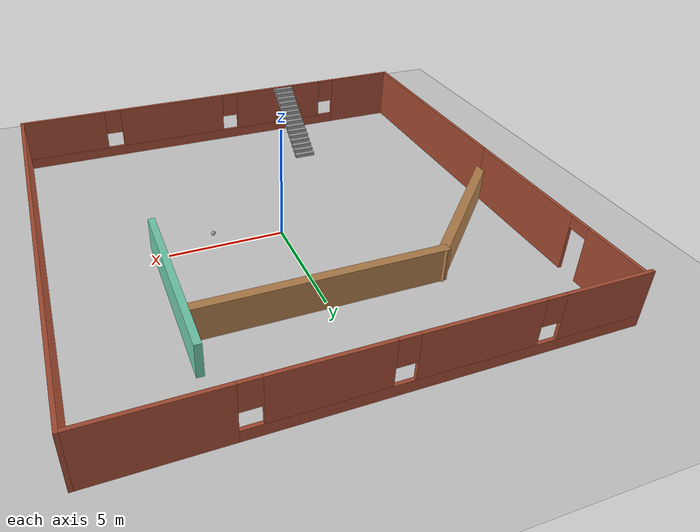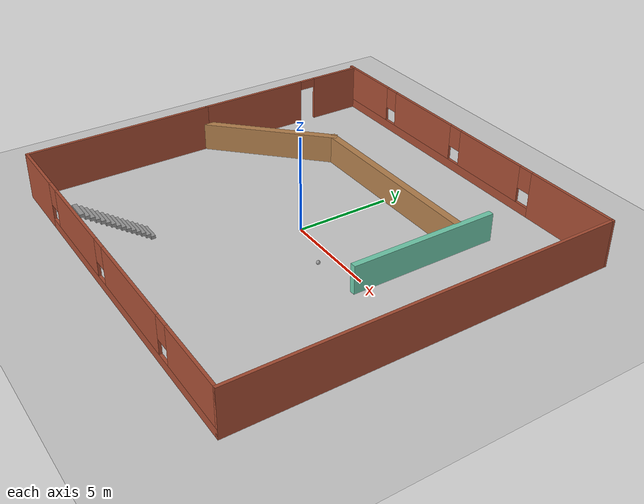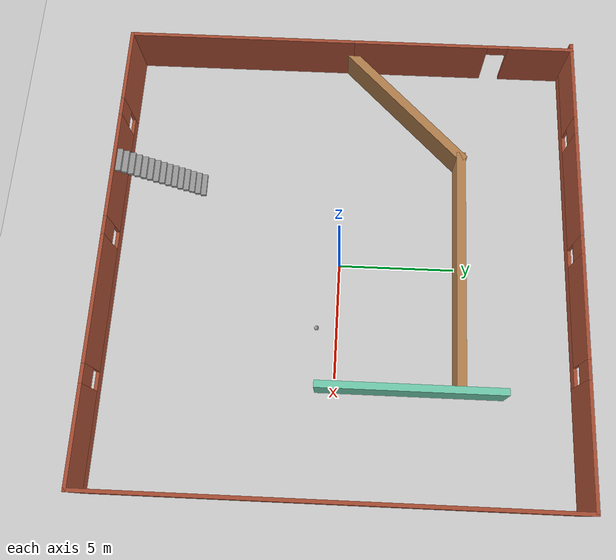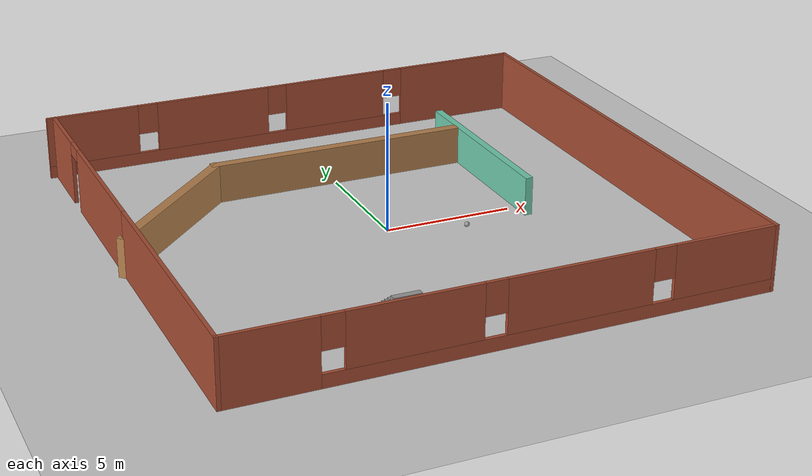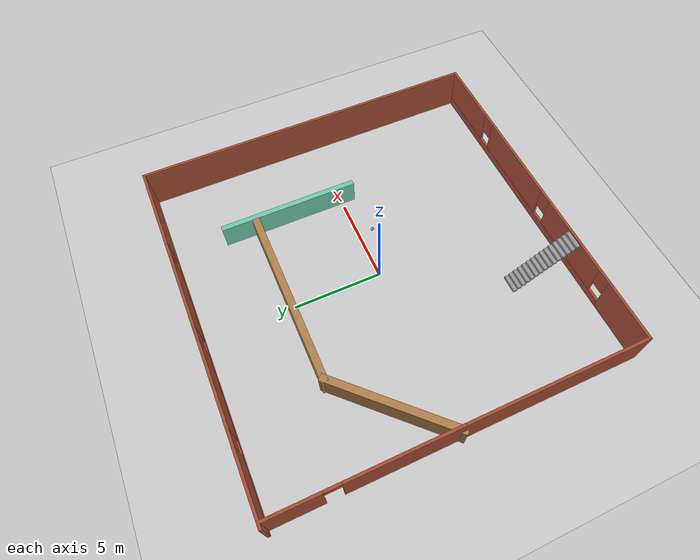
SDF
<sdf version="1.6">
 <world name="default">
  <light name="sun" type="directional">
   <pose>0 0 10 0 -0 0</pose>
   <diffuse>0.8 0.8 0.8 1</diffuse>
   <specular>0.1 0.1 0.1 1</specular>
   <attenuation>
    <range>1000</range>
    <constant>0.9</constant>
    <linear>0.01</linear>
    <quadratic>0.001</quadratic>
   </attenuation>
   <direction>-0.5 0.5 -1</direction>
  </light>
  <model name="ground_plane">
   <static>1</static>
   <link name="link">
    <collision name="collision">
     <geometry><plane><normal>0 0 1</normal><size>100 100</size></plane></geometry>
     <surface><friction><ode><mu>100</mu><mu2>50</mu2></ode></friction></surface>
    </collision>
    <visual name="visual">
     <cast_shadows>0</cast_shadows>
     <geometry><plane><normal>0 0 1</normal><size>100 100</size></plane></geometry>
     <material>
      <script><uri>file://media/materials/scripts/gazebo.material</uri><name>Gazebo/Grey</name></script>
     </material>
    </visual>
   </link>
  </model>
  <gravity>0 0 -9.8</gravity>
  <magnetic_field>6e-06 2.3e-05 -4.2e-05</magnetic_field>
  <atmosphere type="adiabatic"/>
  <physics name="default_physics" default="0" type="ode">
   <max_step_size>0.001</max_step_size>
   <real_time_factor>1</real_time_factor>
   <real_time_update_rate>1000</real_time_update_rate>
  </physics>
  <scene><ambient>0.4 0.4 0.4 1</ambient><background>0.7 0.7 0.7 1</background><shadows>1</shadows></scene>
  <spherical_coordinates>
   <surface_model>EARTH_WGS84</surface_model>
   <latitude_deg>0</latitude_deg>
   <longitude_deg>0</longitude_deg>
   <elevation>0</elevation>
   <heading_deg>0</heading_deg>
  </spherical_coordinates>
  <model name="my_house">
   <pose>-0.060981 0.094672 0 0 -0 0</pose>
   <link name="Stairs_1">
    <visual name="Stairs_1_Visual_0">
     <pose>-3.52265 -6.42087 0.083333 0 -0 0</pose>
     <geometry><box><size>1 0.233333 0.166667</size></box></geometry>
     <material>
      <script><uri>file://media/materials/scripts/gazebo.material</uri><name>Gazebo/Grey</name></script>
      <ambient>1 1 1 1</ambient>
     </material>
     <meta><layer>0</layer></meta>
    </visual>
    <collision name="Stairs_1_Collision_0">
     <geometry><box><size>1 0.233333 0.166667</size></box></geometry>
     <pose>-3.52265 -6.42087 0.083333 0 -0 0</pose>
    </collision>
    <visual name="Stairs_1_Visual_1">
     <pose>-3.52265 -6.6542 0.25 0 -0 0</pose>
     <geometry><box><size>1 0.233333 0.166667</size></box></geometry>
     <material>
      <script><uri>file://media/materials/scripts/gazebo.material</uri><name>Gazebo/Grey</name></script>
      <ambient>1 1 1 1</ambient>
     </material>
     <meta><layer>0</layer></meta>
    </visual>
    <collision name="Stairs_1_Collision_1">
     <geometry><box><size>1 0.233333 0.166667</size></box></geometry>
     <pose>-3.52265 -6.6542 0.25 0 -0 0</pose>
    </collision>
    <visual name="Stairs_1_Visual_2">
     <pose>-3.52265 -6.88753 0.416667 0 -0 0</pose>
     <geometry><box><size>1 0.233333 0.166667</size></box></geometry>
     <material>
      <script><uri>file://media/materials/scripts/gazebo.material</uri><name>Gazebo/Grey</name></script>
      <ambient>1 1 1 1</ambient>
     </material>
     <meta><layer>0</layer></meta>
    </visual>
    <collision name="Stairs_1_Collision_2">
     <geometry><box><size>1 0.233333 0.166667</size></box></geometry>
     <pose>-3.52265 -6.88753 0.416667 0 -0 0</pose>
    </collision>
    <visual name="Stairs_1_Visual_3">
     <pose>-3.52265 -7.12087 0.583333 0 -0 0</pose>
     <geometry><box><size>1 0.233333 0.166667</size></box></geometry>
     <material>
      <script><uri>file://media/materials/scripts/gazebo.material</uri><name>Gazebo/Grey</name></script>
      <ambient>1 1 1 1</ambient>
     </material>
     <meta><layer>0</layer></meta>
    </visual>
    <collision name="Stairs_1_Collision_3">
     <geometry><box><size>1 0.233333 0.166667</size></box></geometry>
     <pose>-3.52265 -7.12087 0.583333 0 -0 0</pose>
    </collision>
    <visual name="Stairs_1_Visual_4">
     <pose>-3.52265 -7.3542 0.75 0 -0 0</pose>
     <geometry><box><size>1 0.233333 0.166667</size></box></geometry>
     <material>
      <script><uri>file://media/materials/scripts/gazebo.material</uri><name>Gazebo/Grey</name></script>
      <ambient>1 1 1 1</ambient>
     </material>
     <meta><layer>0</layer></meta>
    </visual>
    <collision name="Stairs_1_Collision_4">
     <geometry><box><size>1 0.233333 0.166667</size></box></geometry>
     <pose>-3.52265 -7.3542 0.75 0 -0 0</pose>
    </collision>
    <visual name="Stairs_1_Visual_5">
     <pose>-3.52265 -7.58753 0.916667 0 -0 0</pose>
     <geometry><box><size>1 0.233333 0.166667</size></box></geometry>
     <material>
      <script><uri>file://media/materials/scripts/gazebo.material</uri><name>Gazebo/Grey</name></script>
      <ambient>1 1 1 1</ambient>
     </material>
     <meta><layer>0</layer></meta>
    </visual>
    <collision name="Stairs_1_Collision_5">
     <geometry><box><size>1 0.233333 0.166667</size></box></geometry>
     <pose>-3.52265 -7.58753 0.916667 0 -0 0</pose>
    </collision>
    <visual name="Stairs_1_Visual_6">
     <pose>-3.52265 -7.82087 1.08333 0 -0 0</pose>
     <geometry><box><size>1 0.233333 0.166667</size></box></geometry>
     <material>
      <script><uri>file://media/materials/scripts/gazebo.material</uri><name>Gazebo/Grey</name></script>
      <ambient>1 1 1 1</ambient>
     </material>
     <meta><layer>0</layer></meta>
    </visual>
    <collision name="Stairs_1_Collision_6">
     <geometry><box><size>1 0.233333 0.166667</size></box></geometry>
     <pose>-3.52265 -7.82087 1.08333 0 -0 0</pose>
    </collision>
    <visual name="Stairs_1_Visual_7">
     <pose>-3.52265 -8.0542 1.25 0 -0 0</pose>
     <geometry><box><size>1 0.233333 0.166667</size></box></geometry>
     <material>
      <script><uri>file://media/materials/scripts/gazebo.material</uri><name>Gazebo/Grey</name></script>
      <ambient>1 1 1 1</ambient>
     </material>
     <meta><layer>0</layer></meta>
    </visual>
    <collision name="Stairs_1_Collision_7">
     <geometry><box><size>1 0.233333 0.166667</size></box></geometry>
     <pose>-3.52265 -8.0542 1.25 0 -0 0</pose>
    </collision>
    <visual name="Stairs_1_Visual_8">
     <pose>-3.52265 -8.28753 1.41667 0 -0 0</pose>
     <geometry><box><size>1 0.233333 0.166667</size></box></geometry>
     <material>
      <script><uri>file://media/materials/scripts/gazebo.material</uri><name>Gazebo/Grey</name></script>
      <ambient>1 1 1 1</ambient>
     </material>
     <meta><layer>0</layer></meta>
    </visual>
    <collision name="Stairs_1_Collision_8">
     <geometry><box><size>1 0.233333 0.166667</size></box></geometry>
     <pose>-3.52265 -8.28753 1.41667 0 -0 0</pose>
    </collision>
    <visual name="Stairs_1_Visual_9">
     <pose>-3.52265 -8.52087 1.58333 0 -0 0</pose>
     <geometry><box><size>1 0.233333 0.166667</size></box></geometry>
     <material>
      <script><uri>file://media/materials/scripts/gazebo.material</uri><name>Gazebo/Grey</name></script>
      <ambient>1 1 1 1</ambient>
     </material>
     <meta><layer>0</layer></meta>
    </visual>
    <collision name="Stairs_1_Collision_9">
     <geometry><box><size>1 0.233333 0.166667</size></box></geometry>
     <pose>-3.52265 -8.52087 1.58333 0 -0 0</pose>
    </collision>
    <visual name="Stairs_1_Visual_10">
     <pose>-3.52265 -8.7542 1.75 0 -0 0</pose>
     <geometry><box><size>1 0.233333 0.166667</size></box></geometry>
     <material>
      <script><uri>file://media/materials/scripts/gazebo.material</uri><name>Gazebo/Grey</name></script>
      <ambient>1 1 1 1</ambient>
     </material>
     <meta><layer>0</layer></meta>
    </visual>
    <collision name="Stairs_1_Collision_10">
     <geometry><box><size>1 0.233333 0.166667</size></box></geometry>
     <pose>-3.52265 -8.7542 1.75 0 -0 0</pose>
    </collision>
    <visual name="Stairs_1_Visual_11">
     <pose>-3.52265 -8.98753 1.91667 0 -0 0</pose>
     <geometry><box><size>1 0.233333 0.166667</size></box></geometry>
     <material>
      <script><uri>file://media/materials/scripts/gazebo.material</uri><name>Gazebo/Grey</name></script>
      <ambient>1 1 1 1</ambient>
     </material>
     <meta><layer>0</layer></meta>
    </visual>
    <collision name="Stairs_1_Collision_11">
     <geometry><box><size>1 0.233333 0.166667</size></box></geometry>
     <pose>-3.52265 -8.98753 1.91667 0 -0 0</pose>
    </collision>
    <visual name="Stairs_1_Visual_12">
     <pose>-3.52265 -9.22086 2.08333 0 -0 0</pose>
     <geometry><box><size>1 0.233333 0.166667</size></box></geometry>
     <material>
      <script><uri>file://media/materials/scripts/gazebo.material</uri><name>Gazebo/Grey</name></script>
      <ambient>1 1 1 1</ambient>
     </material>
     <meta><layer>0</layer></meta>
    </visual>
    <collision name="Stairs_1_Collision_12">
     <geometry><box><size>1 0.233333 0.166667</size></box></geometry>
     <pose>-3.52265 -9.22086 2.08333 0 -0 0</pose>
    </collision>
    <visual name="Stairs_1_Visual_13">
     <pose>-3.52265 -9.4542 2.25 0 -0 0</pose>
     <geometry><box><size>1 0.233333 0.166667</size></box></geometry>
     <material>
      <script><uri>file://media/materials/scripts/gazebo.material</uri><name>Gazebo/Grey</name></script>
      <ambient>1 1 1 1</ambient>
     </material>
     <meta><layer>0</layer></meta>
    </visual>
    <collision name="Stairs_1_Collision_13">
     <geometry><box><size>1 0.233333 0.166667</size></box></geometry>
     <pose>-3.52265 -9.4542 2.25 0 -0 0</pose>
    </collision>
    <visual name="Stairs_1_Visual_14">
     <pose>-3.52265 -9.68753 2.41667 0 -0 0</pose>
     <geometry><box><size>1 0.233333 0.166667</size></box></geometry>
     <material>
      <script><uri>file://media/materials/scripts/gazebo.material</uri><name>Gazebo/Grey</name></script>
      <ambient>1 1 1 1</ambient>
     </material>
     <meta><layer>0</layer></meta>
    </visual>
    <collision name="Stairs_1_Collision_14">
     <geometry><box><size>1 0.233333 0.166667</size></box></geometry>
     <pose>-3.52265 -9.68753 2.41667 0 -0 0</pose>
    </collision>
   </link>
   <link name="Wall_14">
    <collision name="Wall_14_Collision">
     <geometry><box><size>20 0.15 2.5</size></box></geometry>
     <pose>0 0 1.25 0 -0 0</pose>
    </collision>
    <visual name="Wall_14_Visual">
     <pose>0 0 1.25 0 -0 0</pose>
     <geometry><box><size>20 0.15 2.5</size></box></geometry>
     <material>
      <script><uri>file://media/materials/scripts/gazebo.material</uri><name>Gazebo/Bricks</name></script>
      <ambient>1 1 1 1</ambient>
     </material>
     <meta><layer>0</layer></meta>
    </visual>
    <pose>10.05 0 0 0 -0 1.5708</pose>
   </link>
   <link name="Wall_15">
    <pose>-1e-06 9.925 0 0 -0 3.14159</pose>
    <visual name="Wall_15_Visual_0">
     <pose>-7.59411 0 1.25 0 -0 0</pose>
     <geometry><box><size>5.06177 0.15 2.5</size></box></geometry>
     <material>
      <script><uri>file://media/materials/scripts/gazebo.material</uri><name>Gazebo/Bricks</name></script>
      <ambient>1 1 1 1</ambient>
     </material>
     <meta><layer>0</layer></meta>
    </visual>
    <collision name="Wall_15_Collision_0">
     <geometry><box><size>5.06177 0.15 2.5</size></box></geometry>
     <pose>-7.59411 0 1.25 0 -0 0</pose>
    </collision>
    <visual name="Wall_15_Visual_1">
     <pose>2.53089 0 0.25 0 -0 0</pose>
     <geometry><box><size>15.1882 0.15 0.5</size></box></geometry>
     <material>
      <script><uri>file://media/materials/scripts/gazebo.material</uri><name>Gazebo/Bricks</name></script>
      <ambient>1 1 1 1</ambient>
     </material>
     <meta><layer>0</layer></meta>
    </visual>
    <collision name="Wall_15_Collision_1">
     <geometry><box><size>15.1882 0.15 0.5</size></box></geometry>
     <pose>2.53089 0 0.25 0 -0 0</pose>
    </collision>
    <visual name="Wall_15_Visual_2">
     <pose>-2.06836 0 1.5 0 -0 0</pose>
     <geometry><box><size>4.38974 0.15 2</size></box></geometry>
     <material>
      <script><uri>file://media/materials/scripts/gazebo.material</uri><name>Gazebo/Bricks</name></script>
      <ambient>1 1 1 1</ambient>
     </material>
     <meta><layer>0</layer></meta>
    </visual>
    <collision name="Wall_15_Collision_2">
     <geometry><box><size>4.38974 0.15 2</size></box></geometry>
     <pose>-2.06836 0 1.5 0 -0 0</pose>
    </collision>
    <visual name="Wall_15_Visual_3">
     <pose>3.28189 0 1.5 0 -0 0</pose>
     <geometry><box><size>4.71076 0.15 2</size></box></geometry>
     <material>
      <script><uri>file://media/materials/scripts/gazebo.material</uri><name>Gazebo/Bricks</name></script>
      <ambient>1 1 1 1</ambient>
     </material>
     <meta><layer>0</layer></meta>
    </visual>
    <collision name="Wall_15_Collision_3">
     <geometry><box><size>4.71076 0.15 2</size></box></geometry>
     <pose>3.28189 0 1.5 0 -0 0</pose>
    </collision>
    <visual name="Wall_15_Visual_4">
     <pose>8.28114 0 1.5 0 -0 0</pose>
     <geometry><box><size>3.68773 0.15 2</size></box></geometry>
     <material>
      <script><uri>file://media/materials/scripts/gazebo.material</uri><name>Gazebo/Bricks</name></script>
      <ambient>1 1 1 1</ambient>
     </material>
     <meta><layer>0</layer></meta>
    </visual>
    <collision name="Wall_15_Collision_4">
     <geometry><box><size>3.68773 0.15 2</size></box></geometry>
     <pose>8.28114 0 1.5 0 -0 0</pose>
    </collision>
    <visual name="Wall_15_Visual_5">
     <pose>-4.66323 0 1.9 0 -0 0</pose>
     <geometry><box><size>0.8 0.15 1.2</size></box></geometry>
     <material>
      <script><uri>file://media/materials/scripts/gazebo.material</uri><name>Gazebo/Bricks</name></script>
      <ambient>1 1 1 1</ambient>
     </material>
     <meta><layer>0</layer></meta>
    </visual>
    <collision name="Wall_15_Collision_5">
     <geometry><box><size>0.8 0.15 1.2</size></box></geometry>
     <pose>-4.66323 0 1.9 0 -0 0</pose>
    </collision>
    <visual name="Wall_15_Visual_6">
     <pose>0.526515 0 1.9 0 -0 0</pose>
     <geometry><box><size>0.8 0.15 1.2</size></box></geometry>
     <material>
      <script><uri>file://media/materials/scripts/gazebo.material</uri><name>Gazebo/Bricks</name></script>
      <ambient>1 1 1 1</ambient>
     </material>
     <meta><layer>0</layer></meta>
    </visual>
    <collision name="Wall_15_Collision_6">
     <geometry><box><size>0.8 0.15 1.2</size></box></geometry>
     <pose>0.526515 0 1.9 0 -0 0</pose>
    </collision>
    <visual name="Wall_15_Visual_7">
     <pose>6.03727 0 1.9 0 -0 0</pose>
     <geometry><box><size>0.8 0.15 1.2</size></box></geometry>
     <material>
      <script><uri>file://media/materials/scripts/gazebo.material</uri><name>Gazebo/Bricks</name></script>
      <ambient>1 1 1 1</ambient>
     </material>
     <meta><layer>0</layer></meta>
    </visual>
    <collision name="Wall_15_Collision_7">
     <geometry><box><size>0.8 0.15 1.2</size></box></geometry>
     <pose>6.03727 0 1.9 0 -0 0</pose>
    </collision>
   </link>
   <link name="Wall_17">
    <pose>-9.8 5 0 0 -0 1.5708</pose>
    <visual name="Wall_17_Visual_0">
     <pose>-1.92226 0 1.25 0 -0 0</pose>
     <geometry><box><size>6.15549 0.15 2.5</size></box></geometry>
     <material>
      <script><uri>file://media/materials/scripts/gazebo.material</uri><name>Gazebo/Bricks</name></script>
      <ambient>1 1 1 1</ambient>
     </material>
     <meta><layer>0</layer></meta>
    </visual>
    <collision name="Wall_17_Collision_0">
     <geometry><box><size>6.15549 0.15 2.5</size></box></geometry>
     <pose>-1.92226 0 1.25 0 -0 0</pose>
    </collision>
    <visual name="Wall_17_Visual_1">
     <pose>3.52774 0 1.25 0 -0 0</pose>
     <geometry><box><size>2.94451 0.15 2.5</size></box></geometry>
     <material>
      <script><uri>file://media/materials/scripts/gazebo.material</uri><name>Gazebo/Bricks</name></script>
      <ambient>1 1 1 1</ambient>
     </material>
     <meta><layer>0</layer></meta>
    </visual>
    <collision name="Wall_17_Collision_1">
     <geometry><box><size>2.94451 0.15 2.5</size></box></geometry>
     <pose>3.52774 0 1.25 0 -0 0</pose>
    </collision>
    <visual name="Wall_17_Visual_2">
     <pose>1.60549 0 2.25 0 -0 0</pose>
     <geometry><box><size>0.9 0.15 0.5</size></box></geometry>
     <material>
      <script><uri>file://media/materials/scripts/gazebo.material</uri><name>Gazebo/Bricks</name></script>
      <ambient>1 1 1 1</ambient>
     </material>
     <meta><layer>0</layer></meta>
    </visual>
    <collision name="Wall_17_Collision_2">
     <geometry><box><size>0.9 0.15 0.5</size></box></geometry>
     <pose>1.60549 0 2.25 0 -0 0</pose>
    </collision>
   </link>
   <link name="Wall_21">
    <collision name="Wall_21_Collision">
     <geometry><box><size>7.9 0.3 1.5</size></box></geometry>
     <pose>0 0 0.75 0 -0 0</pose>
    </collision>
    <visual name="Wall_21_Visual">
     <pose>0 0 0.75 0 -0 0</pose>
     <geometry><box><size>7.9 0.3 1.5</size></box></geometry>
     <material>
      <script><uri>file://media/materials/scripts/gazebo.material</uri><name>Gazebo/Grey</name></script>
      <ambient>0.435294 0.796078 0.67451 1</ambient>
     </material>
     <meta><layer>0</layer></meta>
    </visual>
    <pose>5.522 3.051 0 0 0 -1.5708</pose>
   </link>
   <link name="Wall_3">
    <collision name="Wall_3_Collision">
     <geometry><box><size>10.4 0.4 1.5</size></box></geometry>
     <pose>0 0 0.75 0 -0 0</pose>
    </collision>
    <visual name="Wall_3_Visual">
     <pose>0 0 0.75 0 -0 0</pose>
     <geometry><box><size>10.4 0.4 1.5</size></box></geometry>
     <material>
      <script><uri>file://media/materials/scripts/gazebo.material</uri><name>Gazebo/Wood</name></script>
      <ambient>1 1 1 1</ambient>
     </material>
     <meta><layer>0</layer></meta>
    </visual>
    <pose>0.199999 5.075 0 0 -0 3.14159</pose>
   </link>
   <link name="Wall_5">
    <collision name="Wall_5_Collision">
     <geometry><box><size>7.47107 0.4 1.5</size></box></geometry>
     <pose>0 0 0.75 0 -0 0</pose>
    </collision>
    <visual name="Wall_5_Visual">
     <pose>0 0 0.75 0 -0 0</pose>
     <geometry><box><size>7.47107 0.4 1.5</size></box></geometry>
     <material>
      <script><uri>file://media/materials/scripts/gazebo.material</uri><name>Gazebo/Wood</name></script>
      <ambient>1 1 1 1</ambient>
     </material>
     <meta><layer>0</layer></meta>
    </visual>
    <pose>-7.3 2.575 0 0 0 -2.35619</pose>
   </link>
   <link name="Wall_7">
    <collision name="Wall_7_Collision">
     <geometry><box><size>10.15 0.15 2.5</size></box></geometry>
     <pose>0 0 1.25 0 -0 0</pose>
    </collision>
    <visual name="Wall_7_Visual">
     <pose>0 0 1.25 0 -0 0</pose>
     <geometry><box><size>10.15 0.15 2.5</size></box></geometry>
     <material>
      <script><uri>file://media/materials/scripts/gazebo.material</uri><name>Gazebo/Bricks</name></script>
      <ambient>1 1 1 1</ambient>
     </material>
     <meta><layer>0</layer></meta>
    </visual>
    <pose>-9.8 -4.925 0 0 0 -1.5708</pose>
   </link>
   <link name="Wall_9">
    <pose>0.124999 -9.925 0 0 -0 0</pose>
    <visual name="Wall_9_Visual_0">
     <pose>-8.30789 0 1.25 0 -0 0</pose>
     <geometry><box><size>3.38422 0.15 2.5</size></box></geometry>
     <material>
      <script><uri>file://media/materials/scripts/gazebo.material</uri><name>Gazebo/Bricks</name></script>
      <ambient>1 1 1 1</ambient>
     </material>
     <meta><layer>0</layer></meta>
    </visual>
    <collision name="Wall_9_Collision_0">
     <geometry><box><size>3.38422 0.15 2.5</size></box></geometry>
     <pose>-8.30789 0 1.25 0 -0 0</pose>
    </collision>
    <visual name="Wall_9_Visual_1">
     <pose>1.69211 0 0.25 0 -0 0</pose>
     <geometry><box><size>16.6158 0.15 0.5</size></box></geometry>
     <material>
      <script><uri>file://media/materials/scripts/gazebo.material</uri><name>Gazebo/Bricks</name></script>
      <ambient>1 1 1 1</ambient>
     </material>
     <meta><layer>0</layer></meta>
    </visual>
    <collision name="Wall_9_Collision_1">
     <geometry><box><size>16.6158 0.15 0.5</size></box></geometry>
     <pose>1.69211 0 0.25 0 -0 0</pose>
    </collision>
    <visual name="Wall_9_Visual_2">
     <pose>-3.43364 0 1.5 0 -0 0</pose>
     <geometry><box><size>4.76426 0.15 2</size></box></geometry>
     <material>
      <script><uri>file://media/materials/scripts/gazebo.material</uri><name>Gazebo/Bricks</name></script>
      <ambient>1 1 1 1</ambient>
     </material>
     <meta><layer>0</layer></meta>
    </visual>
    <collision name="Wall_9_Collision_2">
     <geometry><box><size>4.76426 0.15 2</size></box></geometry>
     <pose>-3.43364 0 1.5 0 -0 0</pose>
    </collision>
    <visual name="Wall_9_Visual_3">
     <pose>2.45163 0 1.5 0 -0 0</pose>
     <geometry><box><size>5.40629 0.15 2</size></box></geometry>
     <material>
      <script><uri>file://media/materials/scripts/gazebo.material</uri><name>Gazebo/Bricks</name></script>
      <ambient>1 1 1 1</ambient>
     </material>
     <meta><layer>0</layer></meta>
    </visual>
    <collision name="Wall_9_Collision_3">
     <geometry><box><size>5.40629 0.15 2</size></box></geometry>
     <pose>2.45163 0 1.5 0 -0 0</pose>
    </collision>
    <visual name="Wall_9_Visual_4">
     <pose>7.97739 0 1.5 0 -0 0</pose>
     <geometry><box><size>4.04523 0.15 2</size></box></geometry>
     <material>
      <script><uri>file://media/materials/scripts/gazebo.material</uri><name>Gazebo/Bricks</name></script>
      <ambient>1 1 1 1</ambient>
     </material>
     <meta><layer>0</layer></meta>
    </visual>
    <collision name="Wall_9_Collision_4">
     <geometry><box><size>4.04523 0.15 2</size></box></geometry>
     <pose>7.97739 0 1.5 0 -0 0</pose>
    </collision>
    <visual name="Wall_9_Visual_5">
     <pose>-6.21577 0 1.9 0 -0 0</pose>
     <geometry><box><size>0.8 0.15 1.2</size></box></geometry>
     <material>
      <script><uri>file://media/materials/scripts/gazebo.material</uri><name>Gazebo/Bricks</name></script>
      <ambient>1 1 1 1</ambient>
     </material>
     <meta><layer>0</layer></meta>
    </visual>
    <collision name="Wall_9_Collision_5">
     <geometry><box><size>0.8 0.15 1.2</size></box></geometry>
     <pose>-6.21577 0 1.9 0 -0 0</pose>
    </collision>
    <visual name="Wall_9_Visual_6">
     <pose>-0.651515 0 1.9 0 -0 0</pose>
     <geometry><box><size>0.8 0.15 1.2</size></box></geometry>
     <material>
      <script><uri>file://media/materials/scripts/gazebo.material</uri><name>Gazebo/Bricks</name></script>
      <ambient>1 1 1 1</ambient>
     </material>
     <meta><layer>0</layer></meta>
    </visual>
    <collision name="Wall_9_Collision_6">
     <geometry><box><size>0.8 0.15 1.2</size></box></geometry>
     <pose>-0.651515 0 1.9 0 -0 0</pose>
    </collision>
    <visual name="Wall_9_Visual_7">
     <pose>5.55478 0 1.9 0 -0 0</pose>
     <geometry><box><size>0.8 0.15 1.2</size></box></geometry>
     <material>
      <script><uri>file://media/materials/scripts/gazebo.material</uri><name>Gazebo/Bricks</name></script>
      <ambient>1 1 1 1</ambient>
     </material>
     <meta><layer>0</layer></meta>
    </visual>
    <collision name="Wall_9_Collision_7">
     <geometry><box><size>0.8 0.15 1.2</size></box></geometry>
     <pose>5.55478 0 1.9 0 -0 0</pose>
    </collision>
   </link>
   <static>1</static>
  </model>
  <model name="sphere_ball">
   <link name="link_2">
    <inertial>
     <mass>1</mass>
     <inertia><ixx>0.1</ixx><ixy>0</ixy><ixz>0</ixz><iyy>0.1</iyy><iyz>0</iyz><izz>0.1</izz></inertia>
    </inertial>
    <visual name="visual">
     <geometry><sphere><radius>0.1</radius></sphere></geometry>
     <material>
      <lighting>1</lighting>
      <script><uri>file://media/materials/scripts/gazebo.material</uri><name>Gazebo/Grey</name></script>
      <shader type="pixel"><normal_map>__default__</normal_map></shader>
      <ambient>1 1 1 1</ambient>
      <diffuse>1 1 1 1</diffuse>
      <specular>1 1 1 1</specular>
      <emissive>1 1 1 1</emissive>
     </material>
    </visual>
    <collision name="collision">
     <geometry><sphere><radius>0.1</radius></sphere></geometry>
     <surface>
      <friction>
       <ode><mu>1</mu><mu2>1</mu2><fdir1>0 0 0</fdir1><slip1>0</slip1><slip2>0</slip2></ode>
       <torsional>
        <coefficient>1</coefficient>
        <patch_radius>0</patch_radius>
        <surface_radius>0</surface_radius>
        <use_patch_radius>1</use_patch_radius>
        <ode><slip>0</slip></ode>
       </torsional>
      </friction>
      <bounce><restitution_coefficient>0</restitution_coefficient><threshold>1e+06</threshold></bounce>
      <contact>
       <collide_without_contact>0</collide_without_contact>
       <collide_without_contact_bitmask>1</collide_without_contact_bitmask>
       <collide_bitmask>1</collide_bitmask>
       <ode>
        <soft_cfm>0</soft_cfm>
        <soft_erp>0.2</soft_erp>
        <kp>1e+13</kp>
        <kd>1</kd>
        <max_vel>0.01</max_vel>
        <min_depth>0</min_depth>
       </ode>
       <bullet>
        <split_impulse>1</split_impulse>
        <split_impulse_penetration_threshold>-0.01</split_impulse_penetration_threshold>
        <soft_cfm>0</soft_cfm>
        <soft_erp>0.2</soft_erp>
        <kp>1e+13</kp>
        <kd>1</kd>
       </bullet>
      </contact>
     </surface>
    </collision>
   </link>
   <static>0</static>
   <pose>2.85734 -0.857611 0.1 0 -0 0</pose>
  </model>
 </world>
</sdf>
